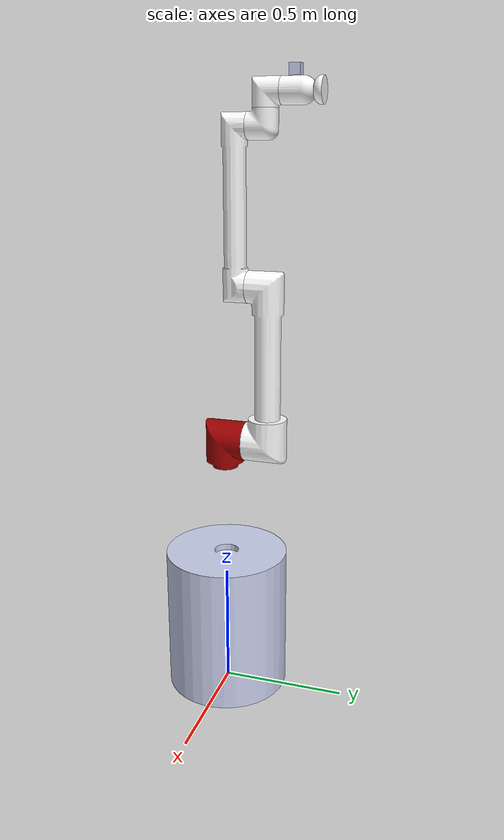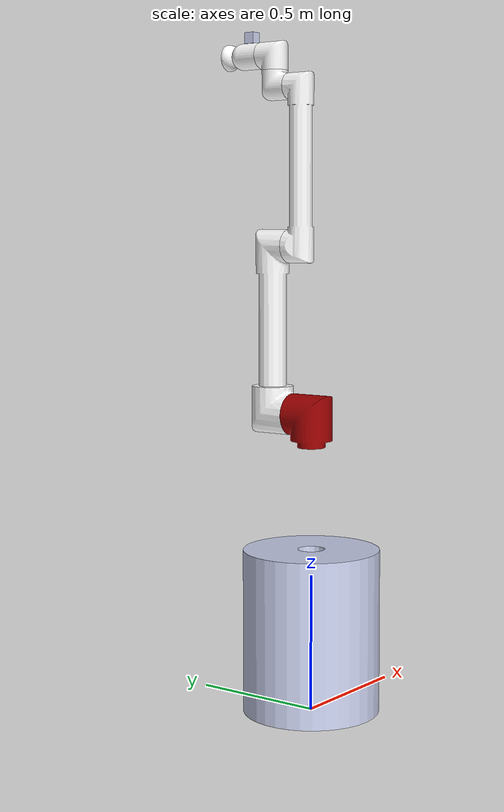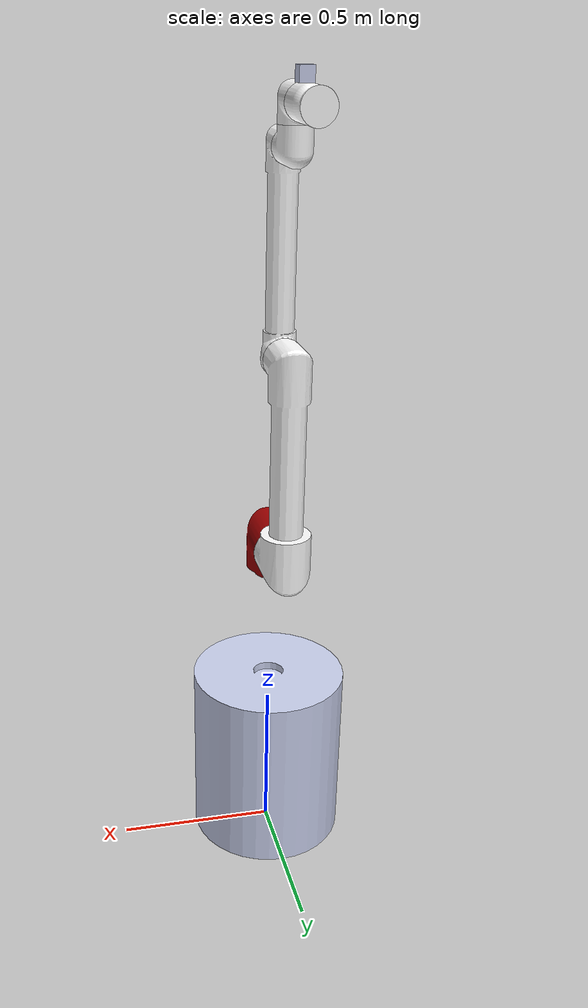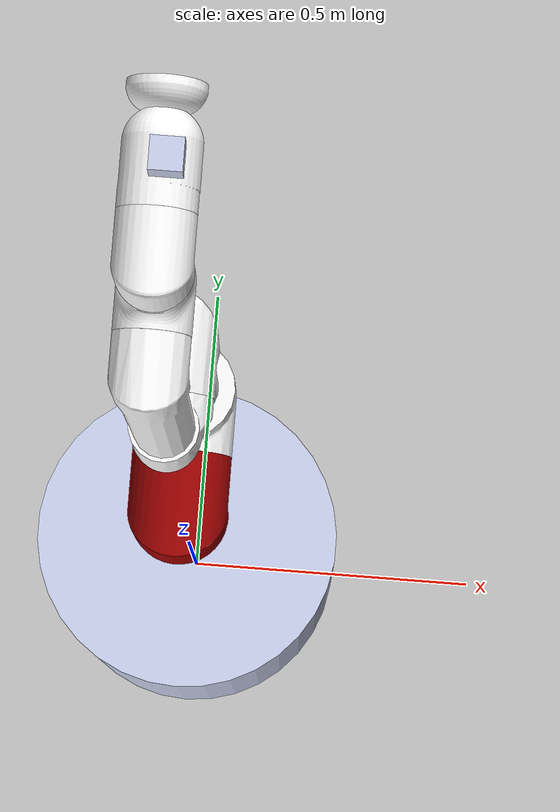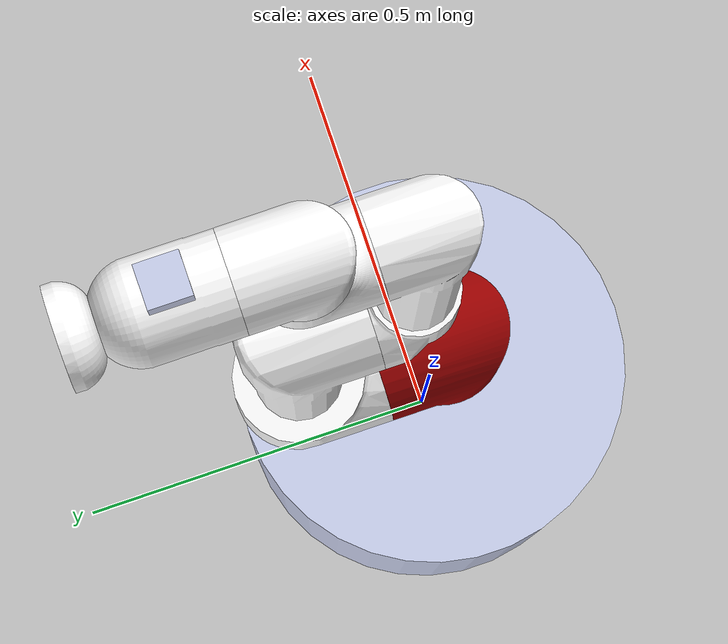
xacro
<?xml version="1.0"?>

<robot
  name="surgical_robot">

  <link name="dummy_link"></link>

  <link
    name="base_link">
    <inertial>
      <origin
        xyz="1.4888E-35 -1.7353E-15 0.49949"
        rpy="0 0 0" />
      <mass
        value="196.14" />
      <inertia
        ixx="19.381"
        ixy="-2.5846E-34"
        ixz="-4.859E-32"
        iyy="19.381"
        iyz="4.7118E-14"
        izz="6.1357" />
    </inertial>
    <visual>
      <origin
        xyz="0 0 0"
        rpy="0 0 0" />
      <geometry>
        <mesh
          filename="package://surgical_robot/meshes/base_link.STL" />
      </geometry>
      <material
        name="">
        <color
          rgba="0.79216 0.81961 0.93333 1" />
      </material>
    </visual>
    <collision>
      <origin
        xyz="0 0 0"
        rpy="0 0 0" />
      <geometry>
        <mesh
          filename="package://surgical_robot/meshes/base_link.STL" />
      </geometry>
    </collision>
  </link>

  <joint name="dummy_joint" type="fixed">
    <origin rpy="0 0 0" xyz="0 0 0" />
    <parent link="dummy_link"/>
    <child link="base_link"/>
  </joint>

  <link
    name="link_1">
    <inertial>
      <origin
        xyz="2.891E-09 0.0039396 0.072722"
        rpy="0 0 0" />
      <mass
        value="3.1124" />
      <inertia
        ixx="0.012618"
        ixy="-1.3877E-09"
        ixz="-1.601E-10"
        iyy="0.012079"
        iyz="-0.00021066"
        izz="0.0095751" />
    </inertial>
    <visual>
      <origin
        xyz="0 0 0"
        rpy="0 0 0" />
      <geometry>
        <mesh
          filename="package://surgical_robot/meshes/link_1.STL" />
      </geometry>
      <material
        name="">
        <color
          rgba="0.61569 0 0 1" />
      </material>
    </visual>
    <collision>
      <origin
        xyz="0 0 0"
        rpy="0 0 0" />
      <geometry>
        <mesh
          filename="package://surgical_robot/meshes/link_1.STL" />
      </geometry>
    </collision>
  </link>
  <joint
    name="joint_1"
    type="revolute">
    <origin
      xyz="0 0 1"
      rpy="0 0 0" />
    <parent
      link="base_link" />
    <child
      link="link_1" />
    <axis
      xyz="0 0 1" />
    <limit
      lower="-6.28"
      upper="6.28"
      effort="1"
      velocity="1" />
  </joint>
  <link
    name="link_2">
    <inertial>
      <origin
        xyz="6.6644E-08 -0.25396 0.16786"
        rpy="0 0 0" />
      <mass
        value="8.8287" />
      <inertia
        ixx="0.51621"
        ixy="-6.1924E-08"
        ixz="1.605E-08"
        iyy="0.022298"
        iyz="0.0072393"
        izz="0.5119" />
    </inertial>
    <visual>
      <origin
        xyz="0 0 0"
        rpy="0 0 0" />
      <geometry>
        <mesh
          filename="package://surgical_robot/meshes/link_2.STL" />
      </geometry>
      <material
        name="">
        <color
          rgba="1 1 1 1" />
      </material>
    </visual>
    <collision>
      <origin
        xyz="0 0 0"
        rpy="0 0 0" />
      <geometry>
        <mesh
          filename="package://surgical_robot/meshes/link_2.STL" />
      </geometry>
    </collision>
  </link>
  <joint
    name="joint_2"
    type="revolute">
    <origin
      xyz="0 0 0.0899"
      rpy="-1.5708 0 0" />
    <parent
      link="link_1" />
    <child
      link="link_2" />
    <axis
      xyz="0 0 -1" />
    <limit
      lower="-6.28"
      upper="6.28"
      effort="1"
      velocity="1" />
  </joint>
  <link
    name="link_3">
    <inertial>
      <origin
        xyz="2.2953E-07 0.26987 0.12548"
        rpy="0 0 0" />
      <mass
        value="4.1976" />
      <inertia
        ixx="0.18328"
        ixy="3.1249E-08"
        ixz="1.0783E-08"
        iyy="0.0046038"
        iyz="-0.00088442"
        izz="0.1832" />
    </inertial>
    <visual>
      <origin
        xyz="0 0 0"
        rpy="0 0 0" />
      <geometry>
        <mesh
          filename="package://surgical_robot/meshes/link_3.STL" />
      </geometry>
      <material
        name="">
        <color
          rgba="1 1 1 1" />
      </material>
    </visual>
    <collision>
      <origin
        xyz="0 0 0"
        rpy="0 0 0" />
      <geometry>
        <mesh
          filename="package://surgical_robot/meshes/link_3.STL" />
      </geometry>
    </collision>
  </link>
  <joint
    name="joint_3"
    type="revolute">
    <origin
      xyz="0 -0.61288 0.176"
      rpy="3.1416 0 0" />
    <parent
      link="link_2" />
    <child
      link="link_3" />
    <axis
      xyz="0 0 1" />
    <limit
      lower="-6.28"
      upper="6.28"
      effort="1"
      velocity="1" />
  </joint>
  <link
    name="link_4">
    <inertial>
      <origin
        xyz="0.047464 -0.0066476 0.1067"
        rpy="0 0 0" />
      <mass
        value="0.85088" />
      <inertia
        ixx="0.001427"
        ixy="8.7678E-09"
        ixz="1.7801E-08"
        iyy="0.0012319"
        iyz="8.631E-05"
        izz="0.0011597" />
    </inertial>
    <visual>
      <origin
        xyz="0 0 0"
        rpy="0 0 0" />
      <geometry>
        <mesh
          filename="package://surgical_robot/meshes/link_4.STL" />
      </geometry>
      <material
        name="">
        <color
          rgba="1 1 1 1" />
      </material>
    </visual>
    <collision>
      <origin
        xyz="0 0 0"
        rpy="0 0 0" />
      <geometry>
        <mesh
          filename="package://surgical_robot/meshes/link_4.STL" />
      </geometry>
    </collision>
  </link>
  <joint
    name="joint_4"
    type="revolute">
    <origin
      xyz="-0.047464 0.57336 0.12966"
      rpy="-3.1416 0 0" />
    <parent
      link="link_3" />
    <child
      link="link_4" />
    <axis
      xyz="0 0 1" />
    <limit
      lower="-6.28"
      upper="6.28"
      effort="1"
      velocity="1" />
  </joint>
  <link
    name="link_5">
    <inertial>
      <origin
        xyz="5.3474E-09 0.0082924 0.10956"
        rpy="0 0 0" />
      <mass
        value="0.7955" />
      <inertia
        ixx="0.0012553"
        ixy="-3.0646E-10"
        ixz="-4.4927E-10"
        iyy="0.0010475"
        iyz="-4.0434E-05"
        izz="0.0011051" />
    </inertial>
    <visual>
      <origin
        xyz="0 0 0"
        rpy="0 0 0" />
      <geometry>
        <mesh
          filename="package://surgical_robot/meshes/link_5.STL" />
      </geometry>
      <material
        name="">
        <color
          rgba="1 1 1 1" />
      </material>
    </visual>
    <collision>
      <origin
        xyz="0 0 0"
        rpy="0 0 0" />
      <geometry>
        <mesh
          filename="package://surgical_robot/meshes/link_5.STL" />
      </geometry>
    </collision>
  </link>
  <joint
    name="joint_5"
    type="revolute">
    <origin
      xyz="0.047464 0.001736 0.11755"
      rpy="1.5708 0 0" />
    <parent
      link="link_4" />
    <child
      link="link_5" />
    <axis
      xyz="0 0 -1" />
    <limit
      lower="-6.28"
      upper="6.28"
      effort="1"
      velocity="1" />
  </joint>
  <link
    name="link_6">
    <inertial>
      <origin
        xyz="0.00039972 0 0.1318"
        rpy="0 0 0" />
      <mass
        value="0.94482" />
      <inertia
        ixx="0.0023254"
        ixy="7.8583E-20"
        ixz="-5.3166E-06"
        iyy="0.0023254"
        iyz="-1.0398E-18"
        izz="0.0010002" />
    </inertial>
    <visual>
      <origin
        xyz="0 0 0"
        rpy="0 0 0" />
      <geometry>
        <mesh
          filename="package://surgical_robot/meshes/link_6.STL" />
      </geometry>
      <material
        name="">
        <color
          rgba="1 1 1 1" />
      </material>
    </visual>
    <collision>
      <origin
        xyz="0 0 0"
        rpy="0 0 0" />
      <geometry>
        <mesh
          filename="package://surgical_robot/meshes/link_6.STL" />
      </geometry>
    </collision>
  </link>
  <joint
    name="joint_6"
    type="revolute">
    <origin
      xyz="0 0 0.1157"
      rpy="-1.5708 0 0" />
    <parent
      link="link_5" />
    <child
      link="link_6" />
    <axis
      xyz="0 0 1" />
    <limit
      lower="-6.28"
      upper="6.28"
      effort="1"
      velocity="1" />
  </joint>
  <link
    name="camera_link">
    <inertial>
      <origin
        xyz="-1.7347E-18 0 -0.02"
        rpy="0 0 0" />
      <mass
        value="0.064" />
      <inertia
        ixx="1.7067E-05"
        ixy="-1.2117E-21"
        ixz="1.3431E-21"
        iyy="1.7067E-05"
        iyz="-1.7324E-21"
        izz="1.7067E-05" />
    </inertial>
    <visual>
      <origin
        xyz="0 0 0"
        rpy="0 0 0" />
      <geometry>
        <mesh
          filename="package://surgical_robot/meshes/camera_link.STL" />
      </geometry>
      <material
        name="">
        <color
          rgba="0.79216 0.81961 0.93333 1" />
      </material>
    </visual>
    <collision>
      <origin
        xyz="0 0 0"
        rpy="0 0 0" />
      <geometry>
        <mesh
          filename="package://surgical_robot/meshes/camera_link.STL" />
      </geometry>
    </collision>
  </link>
  <joint
    name="camera_joint"
    type="fixed">
    <origin
      xyz="0.010115 -0.0675 0.1325"
      rpy="0 0 0" />
    <parent
      link="link_6" />
    <child
      link="camera_link" />
    <axis
      xyz="0 0 0" />
  </joint>

  <gazebo reference="camera_link">
    <sensor type="camera" name="camera_sensor">
      <camera>
        <horizontal_fov>1.047</horizontal_fov> <!-- Field of view (in radians) -->
        <image>
          <width>640</width>
          <height>480</height>
          <format>R8G8B8</format> <!-- RGB8 format -->
        </image>
        <clip>
          <near>0.01</near>
          <far>100</far>
        </clip>
      </camera>
      <plugin name="camera_controller" filename="libgazebo_ros_camera.so">
        <ros>
          <namespace>/camera</namespace> <!-- Namespace for topics -->
          <argument>--ros-args</argument>
        </ros>
        <update_rate>30.0</update_rate>
        <image_topic_name>image_raw</image_topic_name>
        <camera_info_topic_name>camera_info</camera_info_topic_name>
      </plugin>
    </sensor>
  </gazebo>

  <gazebo>
    <plugin name='vacuum_gripper' filename='libgazebo_ros_vacuum_gripper.so'>

      <!-- This part can be commented out if not required -->
      <ros>
        <remapping>grasping:=/grasping</remapping>
      </ros>

      <!-- Link associated with gripper -->
      <link_name>link_6</link_name>

      <!-- Max distance to attract entities -->
      <max_distance>10.0</max_distance>

      <!-- List of entities to be not attracted by the gripper -->
      <fixed>ground_plane</fixed>
      <fixed>wall</fixed>

    </plugin>
  </gazebo>

  <ros2_control name="GazeboSystem" type="system">
			<hardware>
				<plugin>gazebo_ros2_control/GazeboSystem</plugin>
	    </hardware>

      <joint name="joint_1">
        <command_interface name="position">
          <param name="min">-3.14</param>
          <param name="max">3.14</param>
        </command_interface>
        <state_interface name="position"/>
        <state_interface name="velocity"/>
        <state_interface name="effort"/>
      </joint>

      <joint name="joint_2">
        <command_interface name="position">
          <param name="min">-3.14</param>
          <param name="max">3.14</param>
        </command_interface>
        <state_interface name="position"/>
        <state_interface name="velocity"/>
        <state_interface name="effort"/>
      </joint>

      <joint name="joint_3">
        <command_interface name="position">
          <param name="min">-3.14</param>
          <param name="max">3.14</param>
        </command_interface>
        <state_interface name="position"/>
        <state_interface name="velocity"/>
        <state_interface name="effort"/>
      </joint>

      <joint name="joint_4">
        <command_interface name="position">
          <param name="min">-3.14</param>
          <param name="max">3.14</param>
        </command_interface>
        <state_interface name="position"/>
        <state_interface name="velocity"/>
        <state_interface name="effort"/>
      </joint>

      <joint name="joint_5">
        <command_interface name="position">
          <param name="min">-3.14</param>
          <param name="max">3.14</param>
        </command_interface>
        <state_interface name="position"/>
        <state_interface name="velocity"/>
        <state_interface name="effort"/>
      </joint>

      <joint name="joint_6">
        <command_interface name="position">
          <param name="min">-3.14</param>
          <param name="max">3.14</param>
        </command_interface>
        <state_interface name="position"/>
        <state_interface name="velocity"/>
        <state_interface name="effort"/>
      </joint>

	</ros2_control>

	<!-- Gazebo Plugins-->
  <gazebo>
    <plugin name="gazebo_ros2_control" filename="libgazebo_ros2_control.so">
      <robot_sim_type>gazebo_ros2_control/GazeboSystem</robot_sim_type>
      <robot_param>robot_description</robot_param>
          <robot_param_node>robot_state_publisher</robot_param_node>
      <parameters>/home/ponaswin/project2_ws/src/surgical_robot/config/control.yaml</parameters>
    </plugin>
	</gazebo>

</robot>
